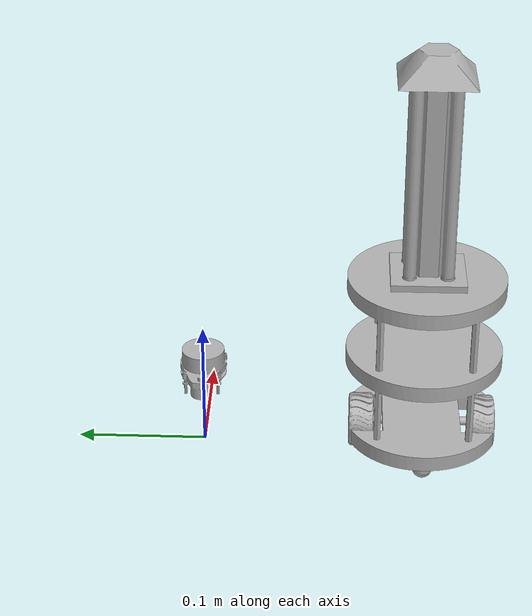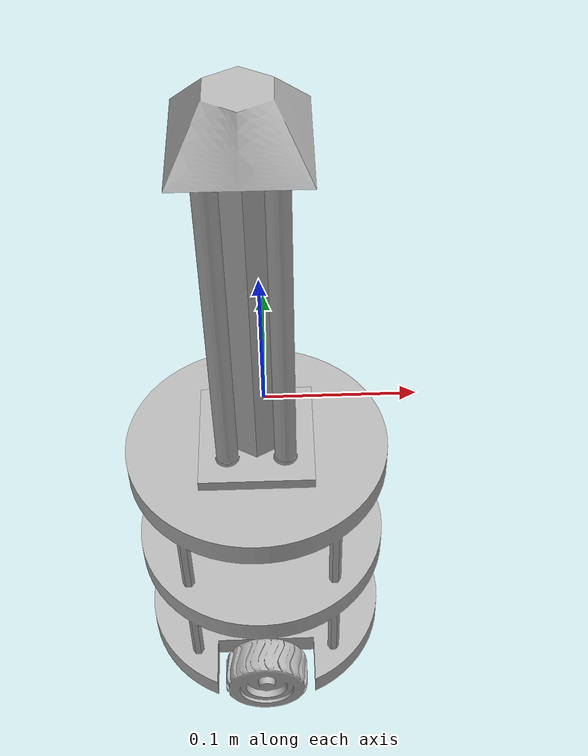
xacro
<?xml version="1.0" ?>
<robot name="AJ_Robot_1" xmlns:xacro="http://www.ros.org/wiki/xacro">

<xacro:include filename="$(find robot_2_description)/urdf/materials.xacro" />
<xacro:include filename="$(find robot_2_description)/urdf/AJ_Robot_1.trans" />
<xacro:include filename="$(find robot_2_description)/urdf/AJ_Robot_1.gazebo" />
<link name="base_link">
  <inertial>
    <origin rpy="0 0 0" xyz="-2.3811758347152808e-17 0.0 0.08849608819331863"/>
    <mass value="2.9983226374255394"/>
    <inertia ixx="0.009617" ixy="0.0" ixz="-0.0" iyy="0.0101" iyz="0.0" izz="0.005331"/>
  </inertial>
  <visual>
    <origin rpy="0 0 0" xyz="0 0 0"/>
    <geometry>
      <mesh filename="package://robot_2_description/meshes/base_link.stl" scale="0.001 0.001 0.001"/>
    </geometry>
    <material name="silver"/>
  </visual>
  <collision>
    <origin rpy="0 0 0" xyz="0 0 0"/>
    <geometry>
      <mesh filename="package://robot_2_description/meshes/base_link.stl" scale="0.001 0.001 0.001"/>
    </geometry>
  </collision>
</link>

<link name="Wheel2_1">
  <inertial>
    <origin rpy="0 0 0" xyz="-1.2928321737958097e-09 0.017071406749536236 6.50085484402152e-09"/>
    <mass value="0.14078492311940977"/>
    <inertia ixx="2.1e-05" ixy="0.0" ixz="-0.0" iyy="3.5e-05" iyz="-0.0" izz="2.1e-05"/>
  </inertial>
  <visual>
    <origin rpy="0 0 0" xyz="-0.0 0.0 -0.021"/>
    <geometry>
      <mesh filename="package://robot_2_description/meshes/Wheel2_1.stl" scale="0.001 0.001 0.001"/>
    </geometry>
    <material name="silver"/>
  </visual>
  <collision>
    <origin rpy="0 0 0" xyz="-0.0 0.0 -0.021"/>
    <geometry>
      <mesh filename="package://robot_2_description/meshes/Wheel2_1.stl" scale="0.001 0.001 0.001"/>
    </geometry>
  </collision>
</link>

<link name="Wheel1_1">
  <inertial>
    <origin rpy="0 0 0" xyz="1.2928295804120461e-09 -0.017071425718733574 6.5008547815714746e-09"/>
    <mass value="0.14078492311940372"/>
    <inertia ixx="2.1e-05" ixy="0.0" ixz="0.0" iyy="3.5e-05" iyz="-0.0" izz="2.1e-05"/>
  </inertial>
  <visual>
    <origin rpy="0 0 0" xyz="-0.0 0.0 -0.021"/>
    <geometry>
      <mesh filename="package://robot_2_description/meshes/Wheel1_1.stl" scale="0.001 0.001 0.001"/>
    </geometry>
    <material name="silver"/>
  </visual>
  <collision>
    <origin rpy="0 0 0" xyz="-0.0 0.0 -0.021"/>
    <geometry>
      <mesh filename="package://robot_2_description/meshes/Wheel1_1.stl" scale="0.001 0.001 0.001"/>
    </geometry>
  </collision>
</link>

<link name="Lidar_1">
  <inertial>
    <origin rpy="0 0 0" xyz="-0.003014093049047084 -2.7755575615628914e-17 0.013927495632128181"/>
    <mass value="0.21813033547639984"/>
    <inertia ixx="3.2e-05" ixy="0.0" ixz="-2e-06" iyy="4.5e-05" iyz="-0.0" izz="4.5e-05"/>
  </inertial>
  <visual>
    <origin rpy="0 0 0" xyz="0.0 0.0 -0.089"/>
    <geometry>
      <mesh filename="package://robot_2_description/meshes/Lidar_1.stl" scale="0.001 0.001 0.001"/>
    </geometry>
    <material name="silver"/>
  </visual>
  <collision>
    <origin rpy="0 0 0" xyz="0.0 0.0 -0.089"/>
    <geometry>
      <mesh filename="package://robot_2_description/meshes/Lidar_1.stl" scale="0.001 0.001 0.001"/>
    </geometry>
  </collision>
</link>

<link name="UV_Lamp_1">
  <inertial>
    <origin rpy="0 0 0" xyz="0.00011440770475406064 -4.108850565998079e-05 0.09562068332536955"/>
    <mass value="0.9567208625597653"/>
    <inertia ixx="0.003745" ixy="0.0" ixz="-2e-06" iyy="0.003723" iyz="1e-06" izz="0.000305"/>
  </inertial>
  <visual>
    <origin rpy="0 0 0" xyz="0.0 0.0 -0.151"/>
    <geometry>
      <mesh filename="package://robot_2_description/meshes/UV_Lamp_1.stl" scale="0.001 0.001 0.001"/>
    </geometry>
    <material name="silver"/>
  </visual>
  <collision>
    <origin rpy="0 0 0" xyz="0.0 0.0 -0.151"/>
    <geometry>
      <mesh filename="package://robot_2_description/meshes/UV_Lamp_1.stl" scale="0.001 0.001 0.001"/>
    </geometry>
  </collision>
</link>

<link name="Caster1_1">
  <inertial>
    <origin rpy="0 0 0" xyz="0.014999999999529452 0.0 -0.007375000000000005"/>
    <mass value="0.017340118826259073"/>
    <inertia ixx="0.0" ixy="-0.0" ixz="0.0" iyy="0.0" iyz="0.0" izz="0.0"/>
  </inertial>
  <visual>
    <origin rpy="0 0 0" xyz="0.06 0.0 -0.016"/>
    <geometry>
      <mesh filename="package://robot_2_description/meshes/Caster1_1.stl" scale="0.001 0.001 0.001"/>
    </geometry>
    <material name="silver"/>
  </visual>
  <collision>
    <origin rpy="0 0 0" xyz="0.06 0.0 -0.016"/>
    <geometry>
      <mesh filename="package://robot_2_description/meshes/Caster1_1.stl" scale="0.001 0.001 0.001"/>
    </geometry>
  </collision>
</link>

<link name="Caster2_1">
  <inertial>
    <origin rpy="0 0 0" xyz="-0.01500000000047054 0.0 -0.007375000000000005"/>
    <mass value="0.017340118826259073"/>
    <inertia ixx="0.0" ixy="0.0" ixz="0.0" iyy="0.0" iyz="0.0" izz="0.0"/>
  </inertial>
  <visual>
    <origin rpy="0 0 0" xyz="-0.06 0.0 -0.016"/>
    <geometry>
      <mesh filename="package://robot_2_description/meshes/Caster2_1.stl" scale="0.001 0.001 0.001"/>
    </geometry>
    <material name="silver"/>
  </visual>
  <collision>
    <origin rpy="0 0 0" xyz="-0.06 0.0 -0.016"/>
    <geometry>
      <mesh filename="package://robot_2_description/meshes/Caster2_1.stl" scale="0.001 0.001 0.001"/>
    </geometry>
  </collision>
</link>

<joint name="Rev1" type="continuous">
  <origin rpy="0 0 0" xyz="0.0 0.0 0.021"/>
  <parent link="base_link"/>
  <child link="Wheel2_1"/>
  <axis xyz="0.0 1.0 0.0"/>
</joint>

<joint name="Rev2" type="continuous">
  <origin rpy="0 0 0" xyz="0.0 0.0 0.021"/>
  <parent link="base_link"/>
  <child link="Wheel1_1"/>
  <axis xyz="-0.0 1.0 -0.0"/>
</joint>

<joint name="LidarJoint" type="fixed">
  <origin rpy="0 0 0" xyz="0.0 0.0 0.089"/>
  <parent link="base_link"/>
  <child link="Lidar_1"/>
  <axis xyz="0 1 0"/>
</joint>

<joint name="UVLampJoint" type="fixed">
  <origin rpy="0 0 0" xyz="0.0 0.0 0.151"/>
  <parent link="base_link"/>
  <child link="UV_Lamp_1"/>
</joint>

<joint name="Caster1Joint" type="fixed">
  <origin rpy="0 0 0" xyz="-0.06 0.0 0.016"/>
  <parent link="base_link"/>
  <child link="Caster1_1"/>
</joint>

<joint name="Caster2Joint" type="fixed">
  <origin rpy="0 0 0" xyz="0.06 0.0 0.016"/>
  <parent link="base_link"/>
  <child link="Caster2_1"/>
</joint>

</robot>

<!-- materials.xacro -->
<robot name="AJ_Robot_1" xmlns:xacro="http://www.ros.org/wiki/xacro" >

<material name="silver">
  <color rgba="0.700 0.700 0.700 1.000"/>
</material>

</robot>

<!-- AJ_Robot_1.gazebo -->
<robot name="AJ_Robot_1" xmlns:xacro="http://www.ros.org/wiki/xacro" >

<xacro:property name="body_color" value="Gazebo/Silver" />

<gazebo>
  <plugin filename="libgazebo_ros_control.so" name="control"/>
</gazebo>

<!-- hokuyo -->
  <gazebo reference="Lidar_1">
    <sensor type="ray" name="head_hokuyo_sensor">
      <pose>0 0 0 0 0 0</pose>
      <visualize>true</visualize>
      <update_rate>40</update_rate>
      <ray>
        <scan>
          <horizontal>
            <samples>720</samples>
            <resolution>1</resolution>
            <min_angle>-1.570796</min_angle>
            <max_angle>1.570796</max_angle>
          </horizontal>
        </scan>
        <range>
          <min>0.10</min>
          <max>30.0</max>
          <resolution>0.01</resolution>
        </range>
        <noise>
          <type>gaussian</type>
          <mean>0.0</mean>
          <stddev>0.01</stddev>
        </noise>
      </ray>
      <plugin name="gazebo_ros_head_hokuyo_controller" filename="libgazebo_ros_laser.so">
        <topicName>/scan</topicName>
        <frameName>Lidar_1</frameName>
      </plugin>
    </sensor>
  </gazebo>

  <!-- camera -->
  <gazebo reference="Lidar_1">
    <sensor type="camera" name="camera1">
      <update_rate>30.0</update_rate>
      <camera name="head">
        <horizontal_fov>1.3962634</horizontal_fov>
        <image>
          <width>800</width>
          <height>800</height>
          <format>R8G8B8</format>
        </image>
        <clip>
          <near>0.02</near>
          <far>300</far>
        </clip>
        <noise>
          <type>gaussian</type>
          <!-- Noise is sampled independently per pixel on each frame.
               That pixel's noise value is added to each of its color
               channels, which at that point lie in the range [0,1]. -->
          <mean>0.0</mean>
          <stddev>0.007</stddev>
        </noise>
      </camera>
      <plugin name="camera_controller" filename="libgazebo_ros_camera.so">
        <alwaysOn>true</alwaysOn>
        <updateRate>0.0</updateRate>
        <cameraName>Lidar_1</cameraName>
        <imageTopicName>image_raw</imageTopicName>
        <cameraInfoTopicName>camera_info</cameraInfoTopicName>
        <frameName>Lidar_1</frameName>
        <hackBaseline>0.07</hackBaseline>
        <distortionK1>0.0</distortionK1>
        <distortionK2>0.0</distortionK2>
        <distortionK3>0.0</distortionK3>
        <distortionT1>0.0</distortionT1>
        <distortionT2>0.0</distortionT2>
      </plugin>
    </sensor>
  </gazebo>

<gazebo>
  <plugin name="differential_drive_controller" filename="libgazebo_ros_diff_drive.so">

    <!-- Plugin update rate in Hz -->
    <updateRate>10</updateRate>

    <!-- Name of left joint, defaults to `left_joint` -->
    <leftJoint>Rev1</leftJoint>

    <!-- Name of right joint, defaults to `right_joint` -->
    <rightJoint>Rev2</rightJoint>

    <!-- Wheel acceleration, in rad/s^2, defaults to 0.0 rad/s^2 -->
    <wheelAcceleration>1.0</wheelAcceleration>

    <!-- Maximum torque which the wheels can produce, in Nm, defaults to 5 Nm -->
    <wheelTorque>20</wheelTorque>

    <!-- Topic to receive geometry_msgs/Twist message commands, defaults to `cmd_vel` -->
    <commandTopic>cmd_vel</commandTopic>

    <!-- Topic to publish nav_msgs/Odometry messages, defaults to `odom` -->
    <odometryTopic>odom</odometryTopic>

    <!-- Odometry frame, defaults to `odom` -->
    <odometryFrame>odom</odometryFrame>

    <!-- Robot frame to calculate odometry from, defaults to `base_footprint` -->
    <robotBaseFrame>base_link</robotBaseFrame>

    <!-- Odometry source, 0 for ENCODER, 1 for WORLD, defaults to WORLD -->
    <odometrySource>1</odometrySource>

    <!-- Set to true to publish transforms for the wheel links, defaults to false -->
    <publishWheelTF>true</publishWheelTF>

    <!-- Set to true to publish transforms for the odometry, defaults to true -->
    <publishOdom>true</publishOdom>

    <!-- Set to true to publish sensor_msgs/JointState on /joint_states for the wheel joints, defaults to false -->
    <publishWheelJointState>true</publishWheelJointState>

    <!-- Set to true to swap right and left wheels, defaults to true -->
    <legacyMode>false</legacyMode>
  </plugin>
</gazebo>

<gazebo reference="base_link">
  <material>${body_color}</material>
  <mu1>0.2</mu1>
  <mu2>0.2</mu2>
  <selfCollide>true</selfCollide>
  <gravity>true</gravity>
</gazebo>

<gazebo reference="Wheel2_1">
  <material>${body_color}</material>
  <mu1>100</mu1>
  <mu2>100</mu2>
  <selfCollide>true</selfCollide>
</gazebo>

<gazebo reference="Wheel1_1">
  <material>${body_color}</material>
  <mu1>100</mu1>
  <mu2>100</mu2>
  <selfCollide>true</selfCollide>
</gazebo>

<gazebo reference="Lidar_1">
  <material>${body_color}</material>
  <mu1>0.2</mu1>
  <mu2>0.2</mu2>
  <selfCollide>true</selfCollide>
</gazebo>

<gazebo reference="UV_Lamp_1">
  <material>${body_color}</material>
  <mu1>0.2</mu1>
  <mu2>0.2</mu2>
  <selfCollide>true</selfCollide>
</gazebo>

<gazebo reference="Caster1_1">
  <material>${body_color}</material>
  <mu1>0.01</mu1>
  <mu2>0.01</mu2>
  <selfCollide>true</selfCollide>
</gazebo>

<gazebo reference="Caster2_1">
  <material>${body_color}</material>
  <mu1>0.01</mu1>
  <mu2>0.01</mu2>
  <selfCollide>true</selfCollide>
</gazebo>

</robot>
